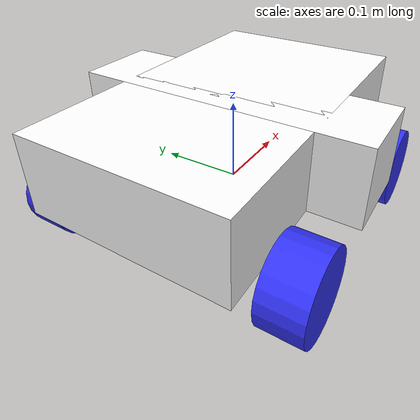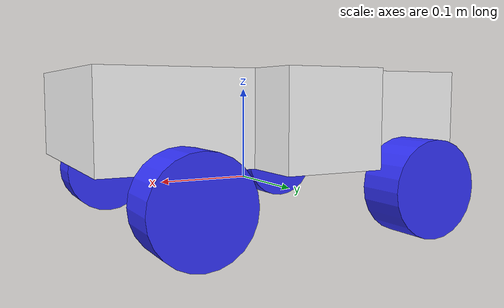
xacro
<?xml version="1.0"?>
<robot xmlns:xacro="http://www.ros.org/wiki/xacro"  name="robot">

    <xacro:include filename="interia_macro.xacro" />

    <material name="white">
        <color rgba="1 1 1 1" />
    </material>
    <material name="orange">
        <color rgba="1 0.3 0.1 1" />
    </material>
    <material name="blue">
        <color rgba="0.2 0.2 1 1" />
    </material>
    <material name="black">
        <color rgba="0 0 0 1" />
    </material>
    <material name="red">
        <color rgba="1 0 0 1" />
    </material>

    <!-- Base Link -->

    <link name="base_link">

    </link>

    <!-- Chassis Link-->

    <joint name="chassis_joint" type="fixed">
        <origin xyz="0.0 0.0 0.025" rpy="0.0 0.0 0.0"/>
        <parent link="base_link"/>
        <child link="chassis_link"/>
    </joint>

    <link name="chassis_link">
        <xacro:inertial_box mass="0.5" x="0.3" y="0.24" z="0.094">
            <origin xyz="0.0 0 0.047" rpy="0 0 0"/>
        </xacro:inertial_box>
        <visual>
            <origin xyz="0.0 0.0 0.047" rpy="0.0 0.0 0.0"/>
            <geometry>
                <box size="0.40 0.24 0.094"/>
            </geometry>
            <material name="white"/>
        </visual>
        <collision>
            <origin xyz="0.0 0.0 0.047" rpy="0.0 0.0 0.0"/>
            <geometry>
                <box size="0.40 0.24 0.094"/>
            </geometry>
            <material name="white"/>
        </collision>

    </link>

    <gazebo reference="chassis_link">
        <material>Gazebo/White</material>
    </gazebo>

    <joint name="chassis_joint_1" type="fixed">
        <origin xyz="0.0 0.0 0.025" rpy="0.0 0.0 0.0"/>
        <parent link="base_link"/>
        <child link="chassis_link_1"/>
    </joint>

    <link name="chassis_link_1">
        <xacro:inertial_box mass="0.5" x="0.3" y="0.24" z="0.094">
            <origin xyz="0.0 0 0.047" rpy="0 0 0"/>
        </xacro:inertial_box>
        <visual>
            <origin xyz="0.0 0.0 0.047" rpy="0.0 0.0 0.0"/>
            <geometry>
                <box size="0.1 0.36 0.094"/>
            </geometry>
            <material name="white"/>
        </visual>
        <collision>
            <origin xyz="0.0 0.0 0.047" rpy="0.0 0.0 0.0"/>
            <geometry>
                <box size="0.1 0.36 0.094"/>
            </geometry>
            <material name="white"/>
        </collision>
    </link>

    <gazebo reference="chassis_link_1">
        <material>Gazebo/White</material>
    </gazebo>

    <!-- Front Left Wheel -->

    <joint name="wheel_FL_joint" type="continuous">
        <origin xyz="0.125 0.15 0.0" rpy="-${pi/2} 0.0 0.0"/>
        <parent link="base_link"/>
        <child link="wheel_FL_link"/>
        <axis xyz="0.0 0.0 1"/>
    </joint>

    <link name="wheel_FL_link">
        <xacro:inertial_cylinder mass="0.05" length="0.05" radius="0.05">
            <origin xyz="0 0 0" rpy="0 0 0"/>
        </xacro:inertial_cylinder>
        <visual>
            <origin xyz="0.0 0.0 0.0" rpy="0.0 0.0 0.0"/>
            <geometry>
                <cylinder radius="0.05" length="0.05"/>
            </geometry>
            <material name="blue"/>
        </visual>
        <collision>
            <origin xyz="0.0 0.0 0.0" rpy="0.0 0.0 0.0"/>
            <geometry>
                <cylinder radius="0.05" length="0.05"/>
            </geometry>
            <material name="blue"/>
        </collision>
    </link>

    <gazebo reference="wheel_FL_link">
        <material>Gazebo/Blue</material>
    </gazebo>

    <!-- Front Right Wheel -->

    <joint name="wheel_FR_joint" type="continuous">
        <origin xyz="0.125 -0.15 0.0" rpy="${pi/2} 0.0 0.0"/>
        <parent link="base_link"/>
        <child link="wheel_FR_link"/>
        <axis xyz="0.0 0.0 -1"/>
    </joint>

    <link name="wheel_FR_link">
        <xacro:inertial_cylinder mass="0.05" length="0.05" radius="0.05">
            <origin xyz="0 0 0" rpy="0 0 0"/>
        </xacro:inertial_cylinder>
        <visual>
            <origin xyz="0.0 0.0 0.0" rpy="0.0 0.0 0.0"/>
            <geometry>
                <cylinder radius="0.05" length="0.05"/>
            </geometry>
            <material name="blue"/>
        </visual>
        <collision>
            <origin xyz="0.0 0.0 0.0" rpy="0.0 0.0 0.0"/>
            <geometry>
                <cylinder radius="0.05" length="0.05"/>
            </geometry>
            <material name="blue"/>
        </collision>
    </link>

    <gazebo reference="wheel_FR_link">
        <material>Gazebo/Blue</material>
    </gazebo>

    <!-- Back Left Wheel -->

    <joint name="wheel_BL_joint" type="continuous">
        <origin xyz="-0.125 0.15 0.0" rpy="-${pi/2} 0.0 0.0"/>
        <parent link="base_link"/>
        <child link="wheel_BL_link"/>
        <axis xyz="0.0 0.0 1"/>
    </joint>

    <link name="wheel_BL_link">
        <xacro:inertial_cylinder mass="0.05" length="0.05" radius="0.05">
            <origin xyz="0 0 0" rpy="0 0 0"/>
        </xacro:inertial_cylinder>
        <visual>
            <origin xyz="0.0 0.0 0.0" rpy="0.0 0.0 0.0"/>
            <geometry>
                <cylinder radius="0.05" length="0.05"/>
            </geometry>
            <material name="blue"/>
        </visual>
        <collision>
            <origin xyz="0.0 0.0 0.0" rpy="0.0 0.0 0.0"/>
            <geometry>
                <cylinder radius="0.05" length="0.05"/>
            </geometry>
            <material name="blue"/>
        </collision>
    </link>

    <gazebo reference="wheel_BL_link">
        <material>Gazebo/Blue</material>
    </gazebo>

    <!-- Back Right Wheel -->

    <joint name="wheel_BR_joint" type="continuous">
        <origin xyz="-0.125 -0.15 0.0" rpy="${pi/2} 0.0 0.0"/>
        <parent link="base_link"/>
        <child link="wheel_BR_link"/>
        <axis xyz="0.0 0.0 -1"/>
    </joint>

    <link name="wheel_BR_link">
        <xacro:inertial_cylinder mass="0.05" length="0.05" radius="0.05">
            <origin xyz="0 0 0" rpy="0 0 0"/>
        </xacro:inertial_cylinder>
        <visual>
            <origin xyz="0.0 0.0 0.0" rpy="0.0 0.0 0.0"/>
            <geometry>
                <cylinder radius="0.05" length="0.05"/>
            </geometry>
            <material name="blue"/>
        </visual>
        <collision>
            <origin xyz="0.0 0.0 0.0" rpy="0.0 0.0 0.0"/>
            <geometry>
                <cylinder radius="0.05" length="0.05"/>
            </geometry>
            <material name="blue"/>
        </collision>
    </link>

    <gazebo reference="wheel_BR_link">
        <material>Gazebo/Blue</material>
    </gazebo>

</robot>
